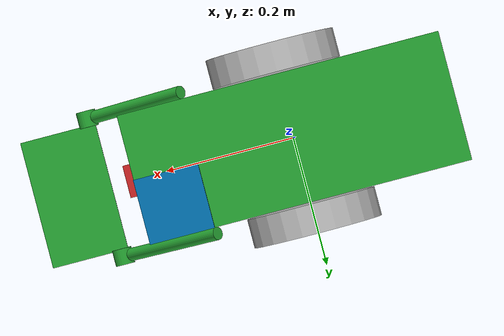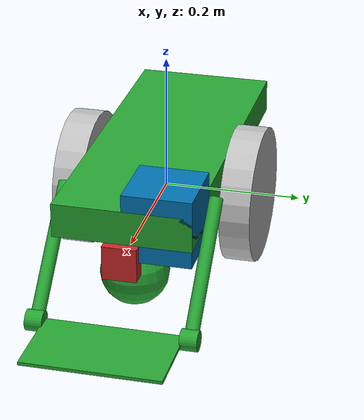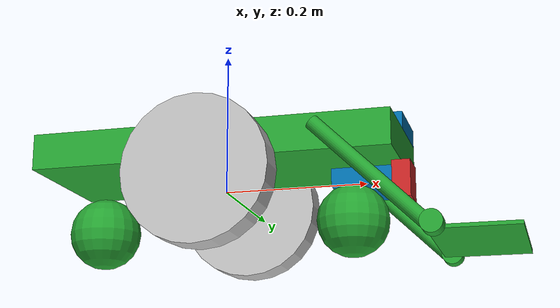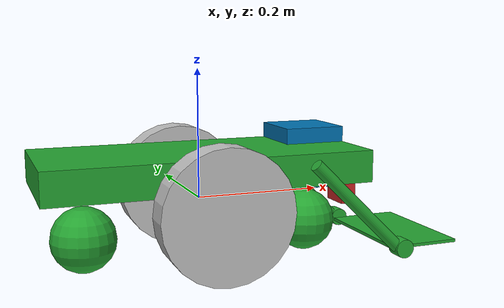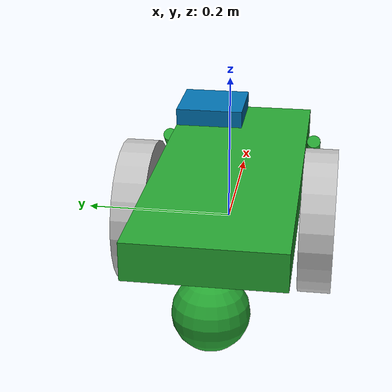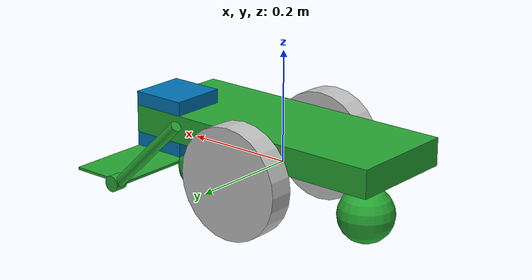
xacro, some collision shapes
<?xml version='1.0'?>

<robot name="my_robot" xmlns:xacro="http://www.ros.org/wiki/xacro">
	<xacro:include filename="$(find my_robot)/urdf/my_robot.gazebo" />
    <link name="robot_footprint"></link>

    <joint name="robot_footprint_joint" type="fixed">
      <origin xyz="0 0 0" rpy="0 0 0" />
      <parent link="robot_footprint"/>
      <child link="chassis" />
    </joint>

    <link name='chassis'>
        <pose>0 0 0.1 0 0 0</pose>
        <inertial>
            <mass value="15.0"/>
            <inertia
                ixx="0.1" ixy="0" ixz="0"
                iyy="0.1" iyz="0"
                izz="0.1"
            />
            <origin xyz='0 0 0' rpy='0 0 0'/>
        </inertial>

        <visual name='chassis_visual'>
            <origin xyz='0 0 .05' rpy='0 0 0'/>
            <geometry>
                <box size='.5 0.2 0.05'/>
            </geometry>
        </visual>

        <collision name='chassis_collision'>
            <origin xyz='0 0 .05' rpy='0 0 0'/>
            <geometry>
                <box size='.5 0.2 0.05'/>
            </geometry>
        </collision>

        <visual name='fw_shaft_visual'>
            <origin xyz=".22 .11 -0.01" rpy="0 -.8 0"/>
            <geometry>
                <cylinder radius='0.01' length='0.2'/>
            </geometry>
        </visual>

        <collision name='fw_shaft_collision'>
            <origin xyz=".22 .11 -0.01" rpy="0 -.8 0"/>
            <geometry>
                <cylinder radius='0.01' length='0.2'/>
            </geometry>
        </collision>

        <visual name='fw_shaft_alt_visual'>
            <origin xyz=".22 -.11 -0.01" rpy="0 -.8 0"/>
            <geometry>
                <cylinder radius='0.01' length='0.2'/>
            </geometry>
        </visual>

        <collision name='fw_shaft_alt_collision'>
            <origin xyz=".22 -.11 -0.01" rpy="0 -.8 0"/>
            <geometry>
                <cylinder radius='0.01' length='0.2'/>
            </geometry>
        </collision>

        <visual name='visual'>
            <origin xyz='.3 .11 -.082' rpy='0 1.5707 1.5707'/>
            <geometry>
                <cylinder radius='0.015' length='0.025'/>
            </geometry>
        </visual>

        <collision name='collision'>
            <origin xyz='.3 .11 -.082' rpy='0 1.5707 1.5707'/>
            <geometry>
                <cylinder radius='0.015' length='0.025'/>
            </geometry>
        </collision>

        <visual name='visual'>
            <origin xyz='.3 -.11 -.082' rpy='0 1.5707 1.5707'/>
            <geometry>
                <cylinder radius='0.015' length='0.025'/>
            </geometry>
        </visual>

        <collision name='collision'>
            <origin xyz='.3 -.11 -.082' rpy='0 1.5707 1.5707'/>
            <geometry>
                <cylinder radius='0.015' length='0.025'/>
            </geometry>
        </collision>

        <collision name='back_caster_collision'>
          <origin xyz="-0.18 0 -0.05" rpy=" 0 0 0"/>
          <geometry>
            <sphere radius="0.0499"/>
          </geometry>
        </collision>

        <visual name='back_caster_visual'>
          <origin xyz="-0.18 0 -0.05" rpy=" 0 0 0"/>
          <geometry>
            <sphere radius="0.05"/>
          </geometry>
        </visual>

        <collision name='front_caster_collision'>
          <origin xyz="0.18 0 -0.05" rpy=" 0 0 0"/>
          <geometry>
            <sphere radius="0.0499"/>
          </geometry>
        </collision>

        <visual name='front_caster_visual'>
          <origin xyz="0.18 0 -0.05" rpy=" 0 0 0"/>
          <geometry>
            <sphere radius="0.05"/>
          </geometry>
        </visual>

        <collision name='tray'>
          <origin xyz="0.35 0 -0.085" rpy=" 0 0 0"/>
          <geometry>
            <box size='.12 0.2 0.005'/>
          </geometry>
        </collision>

        <visual name='tray'>
          <origin xyz="0.35 0 -0.085" rpy=" 0 0 0"/>
          <geometry>
            <box size='.12 0.2 0.005'/>
          </geometry>
        </visual>
    </link>

    <link name='camera'>
        <inertial>
            <mass value=".1"/>
            <inertia
                ixx="0.166667" ixy="0" ixz="0"
                iyy="0.166667" iyz="0"
                izz="0.166667"
            />
            <origin xyz='0 0 0' rpy='0 0 0'/>
        </inertial>

        <visual name='camera_visual'>
            <origin xyz='0 0 0' rpy='0 0 0'/>
            <geometry>
                <box size='0.025 0.05 0.05'/>
            </geometry>
        </visual>
        <collision name='camera_collision'>
            <origin xyz='0 0 0' rpy='0 0 0'/>
            <geometry>
                <box size='0.025 0.05 0.05'/>
            </geometry>
        </collision>
    </link>

    <joint name="camera_optical_joint" type="fixed">
        <origin xyz="0 0 0" rpy="-1.5707 0 -1.5707"/>
        <parent link="camera"/>
        <child link="camera_link_optical"/>
      </joint>

    <link name="camera_link_optical">
    </link>

	<link name='hokuyo'>
        <inertial>
            <mass value="1e-5"/>
            <origin xyz="0 0 0" rpy=" 0.1 0 0"/>
            <inertia
                ixx="1e-6" ixy="0" ixz="0"
                iyy="1e-6" iyz="0"
                izz="1e-6"
            />
        </inertial>

        <collision name='hokuyo_collision'>
            <origin xyz="0 0 0" rpy=" 0 0 0"/>
            <geometry>
            <box size=".1 .1 .1"/>
            </geometry>
        </collision>

        <visual name='hokuyo_visual'>
            <origin xyz="0 0 0" rpy=" 0 0 0"/>
            <geometry>
            <mesh filename="package://my_robot/meshes/hokuyo.dae"/>
            </geometry>
        </visual>
    </link>

    <joint type="fixed" name="hokuyo_joint">
        <origin xyz="0.20 0.05 0.05" rpy="0 0 0"/>
        <child link="hokuyo"/>
        <parent link="chassis"/>
        <axis xyz="0 1 0" rpy="0 0 0"/>
    </joint>

    <link name='left_front_wheel'>
        <inertial>
            <mass value="5.0"/>
            <inertia
                ixx="0.1" ixy="0" ixz="0"
                iyy="0.1" iyz="0"
                izz="0.1"
            />
            <origin xyz="0.0 0 0" rpy=" 0 1.5707 1.5707"/>
        </inertial>

        <visual name='visual'>
            <origin frame='0 0 0' rpy='0 1.5707 1.5707'/>
            <geometry>
                <cylinder radius='0.1' length='0.045' />
            </geometry>
            <material name="">
              <color rgba="0.75294 0.75294 0.75294 1"/>
            </material>
        </visual>

        <collision name='collision'>
            <origin frame='0 0 0' rpy='0 1.5707 1.5707'/>
            <geometry>
                <cylinder radius='0.1' length='0.045' />
            </geometry>
        </collision>
    </link>

    <link name='right_front_wheel'>
        <inertial>
            <mass value="5.0"/>
            <inertia
                ixx="0.1" ixy="0" ixz="0"
                iyy="0.1" iyz="0"
                izz="0.1"
            />
            <origin xyz="0.0 0 0" rpy=" 0 1.5707 1.5707"/>
        </inertial>

        <visual name='visual'>
            <origin frame='0 0 0' rpy='0 1.5707 1.5707'/>
            <geometry>
                <cylinder radius='0.1' length='0.045' />
            </geometry>
            <material name="">
              <color rgba="0.75294 0.75294 0.75294 1"/>
            </material>
        </visual>

        <collision name='collision'>
            <origin frame='0 0 0' rpy='0 1.5707 1.5707'/>
            <geometry>
                <cylinder radius='0.1' length='0.045' />
            </geometry>
        </collision>
    </link>

    <joint type='continuous' name='left_front_wheel_hinge'>
        <origin xyz='.0 .125 0' ryp='0 0 0' />
        <child link='left_front_wheel'/>
        <parent link='chassis'/>
        <axis xyz="0 1 0" rpy="0 0 0"/>
        <limit effort="10000" velocity="1000"/>
        <dynamics damping="1.0" friction="1.0"/>
    </joint>

    <joint type='continuous' name='right_front_wheel_hinge'>
        <origin xyz='.0 -.125 0' ryp='0 0 0' />
        <child link='right_front_wheel'/>
        <parent link='chassis'/>
        <axis xyz="0 1 0" rpy="0 0 0"/>
        <limit effort="10000" velocity="1000"/>
        <dynamics damping="1.0" friction="1.0"/>
    </joint>

    <joint name='chassis_JOINT_0_0' type='fixed'>
      <parent link='chassis'/>
      <child link='camera'/>
      <origin xyz="0.25 0 0" rpy="0 0 0"/>
      <axis xyz="0 1 0" rpy="0 0 0"/>
    </joint>

    <gazebo reference="chassis">
        <material>Gazebo/Green</material>
    </gazebo>

    <gazebo reference="camera">
        <material>Gazebo/Red</material>
    </gazebo>

</robot>
